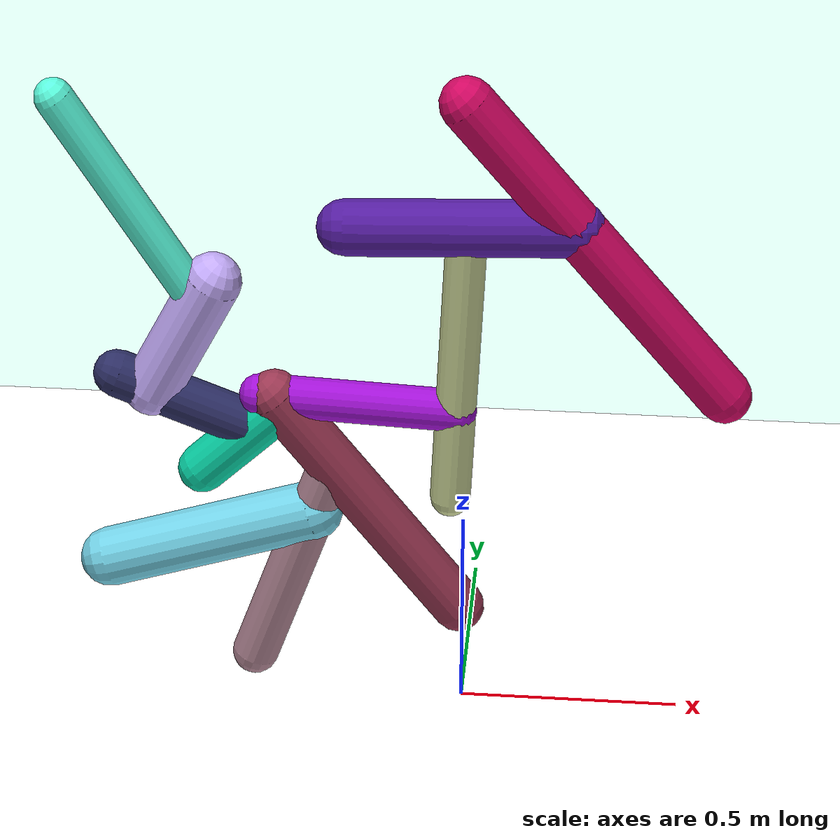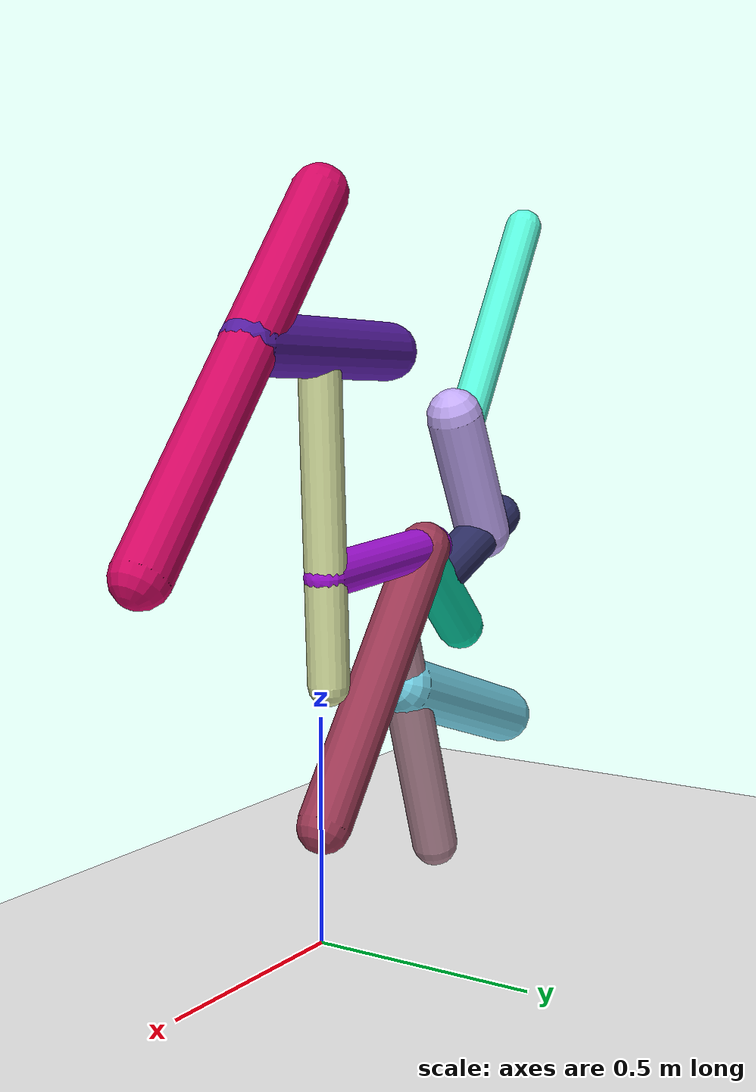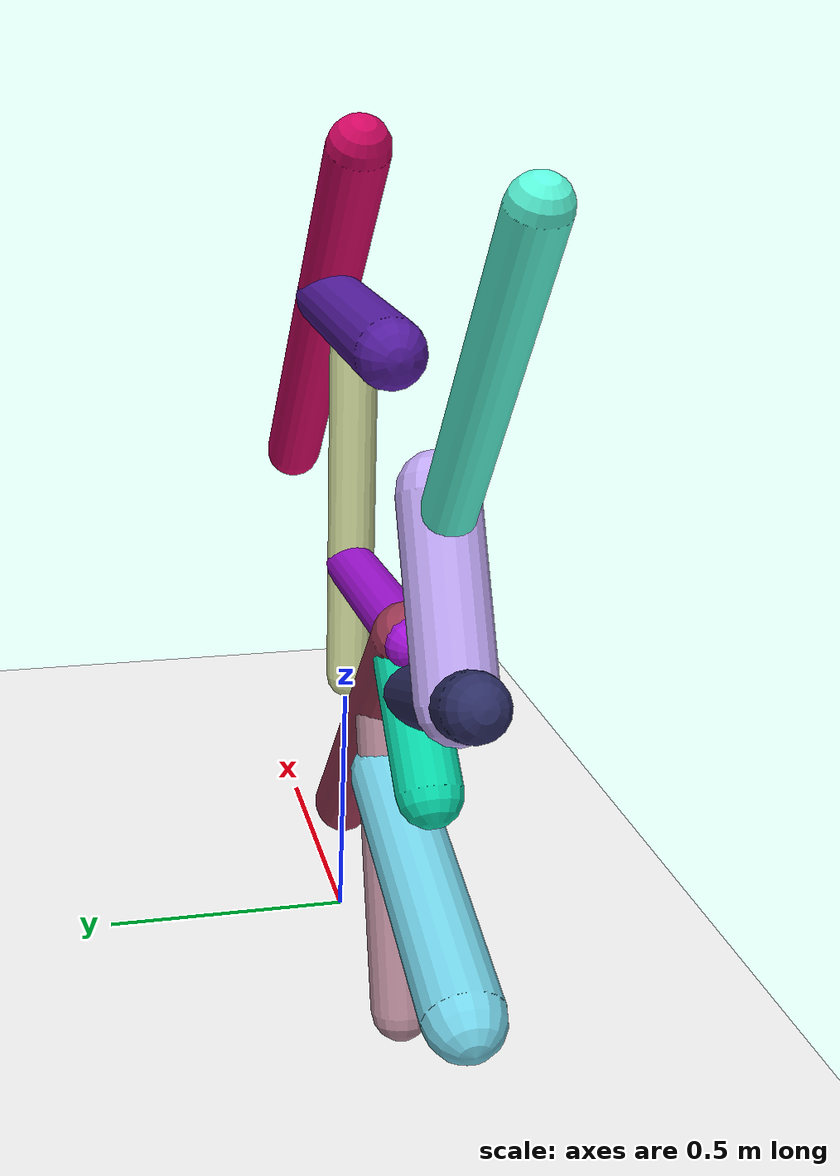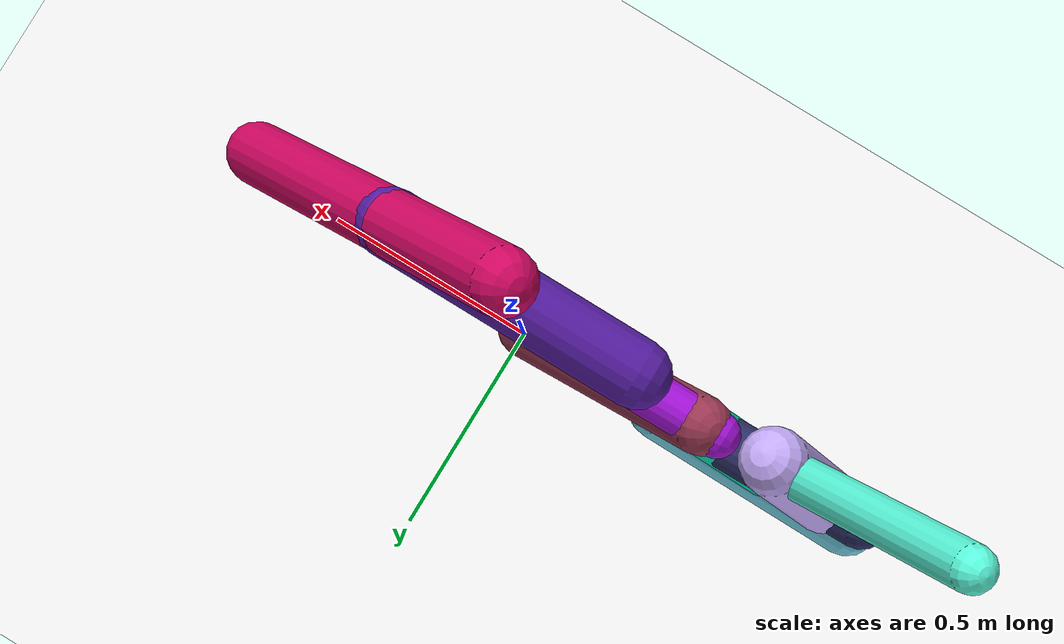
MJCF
<mujoco model="morphology">
  <option timestep="0.01"/>
  <default>
    <default class="/"/>
    <default class="0/"/>
    <default class="0/1/"/>
    <default class="0/1/2/"/>
    <default class="0/1/2/3/"/>
    <default class="0/1/2/3/4/"/>
    <default class="0/1/2/3/4/5/"/>
    <default class="0/1/2/3/4/5/6/"/>
    <default class="0/1/2/3/4/7/"/>
    <default class="0/1/2/3/4/7/8/"/>
    <default class="0/1/2/3/4/7/8/9/"/>
    <default class="0/1/2/3/4/7/8/9/10/"/>
  </default>
  <asset>
    <texture name="texplane" type="2d" builtin="checker" rgb1="0.10000000000000001 0.20000000000000001 0.29999999999999999" rgb2="0.20000000000000001 0.29999999999999999 0.40000000000000002" width="300" height="300"/>
    <material name="MatPlane" class="/" texture="texplane" texrepeat="20 20" specular="1" shininess="1" reflectance="0.5"/>
  </asset>
  <worldbody>
    <light name="//unnamed_light_0" class="/" directional="true" pos="0 0 1.5" dir="0 0 -1.3" cutoff="100" exponent="1" diffuse="1 1 1" specular="0.10000000000000001 0.10000000000000001 0.10000000000000001"/>
    <geom name="ground" class="/" type="plane" size="15 15 0.5" material="MatPlane" rgba="1 1 1 1"/>
    <site name="body" class="/" size="9.9999999999999995e-07 9.9999999999999995e-07 9.9999999999999995e-07" pos="0 0 1.5937223196029664"/>
    <body pos="0 0 1.5937223196029664" name="0/">
      <joint name="0/rootx/" class="/" type="slide" axis="1 0 0" limited="false" stiffness="0" armature="0" damping="0"/>
      <joint name="0/rootz/" class="/" type="slide" axis="0 0 1" limited="false" stiffness="0" armature="0" damping="0"/>
      <joint name="0/rooty/" class="/" type="hinge" axis="0 1 0" limited="false" stiffness="0" armature="0" damping="0"/>
      <geom name="0/geom" class="0/" type="capsule" contype="1" conaffinity="1" condim="3" size="0.061814718757269627" rgba="0.82457119705670245 0.023491205641625656 0.38584653690992665 1" friction="0.59999999999999998 0.10000000000000001 0.10000000000000001" fromto="0 0 0 0.5795644691687194 0 -0.72140255403867171"/>
      <site name="0/end0" class="0/" size="0.0050000000000000001" pos="0.5795644691687194 0 -0.72140255403867171"/>
      <site name="0/attach1" class="0/" size="9.9999999999999995e-07 9.9999999999999995e-07 9.9999999999999995e-07" pos="0.24312702643350736 0 -0.30262803735454774"/>
      <body pos="0.24312702643350736 0 -0.30262803735454774" name="0/1/">
        <joint name="0/1/joint/" class="0/" type="hinge" axis="0 1 0" limited="true" range="-35.271294893660347 35.271294893660347"/>
        <geom name="0/1/geom" class="0/1/" type="capsule" contype="1" conaffinity="1" condim="3" size="0.064137200323948096" rgba="0.33465027778372225 0.11384248422378174 0.63260252153754204 1" friction="0.59999999999999998 0.10000000000000001 0.10000000000000001" fromto="0 0 0 -0.50792039785211185 0 -0.02119942445548828"/>
        <site name="0/1/end1" class="0/1/" size="0.0050000000000000001" pos="-0.50792039785211185 0 -0.02119942445548828"/>
        <site name="0/1/attach2" class="0/1/" size="9.9999999999999995e-07 9.9999999999999995e-07 9.9999999999999995e-07" pos="-0.24013173848822275 0 -0.010022544223412665"/>
        <body pos="-0.24013173848822275 0 -0.010022544223412665" name="0/1/2/">
          <geom name="0/1/2/geom" class="0/1/2/" type="capsule" contype="1" conaffinity="1" condim="3" size="0.045987058666026592" rgba="0.82778414055767469 0.86680974332060345 0.61635213896684571 1" friction="0.59999999999999998 0.10000000000000001 0.10000000000000001" fromto="0 0 0 -0.032843291983322254 0 -0.7165169607050963"/>
          <site name="0/1/2/end2" class="0/1/2/" size="0.0050000000000000001" pos="-0.032843291983322254 0 -0.7165169607050963"/>
          <site name="0/1/2/attach3" class="0/1/2/" size="9.9999999999999995e-07 9.9999999999999995e-07 9.9999999999999995e-07" pos="-0.022049367318711644 0 -0.48103416870318944"/>
          <body pos="-0.022049367318711644 0 -0.48103416870318944" name="0/1/2/3/">
            <joint name="0/1/2/3/joint/" class="0/1/2/" type="hinge" axis="0 1 0" limited="true" range="-57.09290934808692 57.09290934808692"/>
            <geom name="0/1/2/3/geom" class="0/1/2/3/" type="capsule" contype="1" conaffinity="1" condim="3" size="0.04812817781446211" rgba="0.64241987009919199 0.070497617459212458 0.8468628478177036 1" friction="0.59999999999999998 0.10000000000000001 0.10000000000000001" fromto="0 0 0 -0.4394650411590047 0 0.020073671619084799"/>
            <site name="0/1/2/3/end3" class="0/1/2/3/" size="0.0050000000000000001" pos="-0.4394650411590047 0 0.020073671619084799"/>
            <site name="0/1/2/3/attach4" class="0/1/2/3/" size="9.9999999999999995e-07 9.9999999999999995e-07 9.9999999999999995e-07" pos="-0.4073181238286529 0 0.018605280275933871"/>
            <body pos="-0.4073181238286529 0 0.018605280275933871" name="0/1/2/3/4/">
              <joint name="0/1/2/3/4/joint/" class="0/1/2/3/" type="hinge" axis="0 1 0" limited="true" range="-35.375353892833481 35.375353892833481"/>
              <geom name="0/1/2/3/4/geom" class="0/1/2/3/4/" type="capsule" contype="1" conaffinity="1" condim="3" size="0.060239342640682342" rgba="0.60890403015048877 0.21938454724087542 0.32750648822257744 1" friction="0.59999999999999998 0.10000000000000001 0.10000000000000001" fromto="0 0 0 0.41653768247024781 0 -0.56038537503953156"/>
              <site name="0/1/2/3/4/end4" class="0/1/2/3/4/" size="0.0050000000000000001" pos="0.41653768247024781 0 -0.56038537503953156"/>
              <site name="0/1/2/3/4/attach5" class="0/1/2/3/4/" size="9.9999999999999995e-07 9.9999999999999995e-07 9.9999999999999995e-07" pos="0.12992508985690349 0 -0.17479359796386776"/>
              <body pos="0.12992508985690349 0 -0.17479359796386776" name="0/1/2/3/4/5/">
                <joint name="0/1/2/3/4/5/joint/" class="0/1/2/3/4/" type="hinge" axis="0 1 0" limited="true" range="-41.073199378056074 41.073199378056074"/>
                <geom name="0/1/2/3/4/5/geom" class="0/1/2/3/4/5/" type="capsule" contype="1" conaffinity="1" condim="3" size="0.053722467302398609" rgba="0.70599592656928889 0.53417729328368624 0.59063058269953106 1" friction="0.59999999999999998 0.10000000000000001 0.10000000000000001" fromto="0 0 0 -0.18523284267120688 0 -0.54384926860431937"/>
                <site name="0/1/2/3/4/5/end5" class="0/1/2/3/4/5/" size="0.0050000000000000001" pos="-0.18523284267120688 0 -0.54384926860431937"/>
                <site name="0/1/2/3/4/5/attach6" class="0/1/2/3/4/5/" size="9.9999999999999995e-07 9.9999999999999995e-07 9.9999999999999995e-07" pos="-0.046186086218277397 0 -0.13560375604714861"/>
                <body pos="-0.046186086218277397 0 -0.13560375604714861" name="0/1/2/3/4/5/6/">
                  <joint name="0/1/2/3/4/5/6/joint/" class="0/1/2/3/4/5/" type="hinge" axis="0 1 0" limited="true" range="-42.446897267931625 42.446897267931625"/>
                  <geom name="0/1/2/3/4/5/6/geom" class="0/1/2/3/4/5/6/" type="capsule" contype="1" conaffinity="1" condim="3" size="0.068641359471369873" rgba="0.4542964034038881 0.82832085931233534 0.91168562254193675 1" friction="0.59999999999999998 0.10000000000000001 0.10000000000000001" fromto="0 0 0 -0.4717241051741744 0 -0.15768099426176896"/>
                  <site name="0/1/2/3/4/5/6/end6" class="0/1/2/3/4/5/6/" size="0.0050000000000000001" pos="-0.4717241051741744 0 -0.15768099426176896"/>
                </body>
              </body>
              <site name="0/1/2/3/4/attach7" class="0/1/2/3/4/" size="9.9999999999999995e-07 9.9999999999999995e-07 9.9999999999999995e-07" pos="0.016373427848274322 0 -0.022027849799863646"/>
              <body pos="0.016373427848274322 0 -0.022027849799863646" name="0/1/2/3/4/7/">
                <joint name="0/1/2/3/4/7/joint/" class="0/1/2/3/4/" type="hinge" axis="0 1 0" limited="true" range="-32.818792124034161 32.818792124034161"/>
                <geom name="0/1/2/3/4/7/geom" class="0/1/2/3/4/7/" type="capsule" contype="1" conaffinity="1" condim="3" size="0.056470434853130656" rgba="0.030241961856818267 0.83443289671715482 0.65984533534110257 1" friction="0.59999999999999998 0.10000000000000001 0.10000000000000001" fromto="0 0 0 -0.18386461127816189 0 -0.18455008651390181"/>
                <site name="0/1/2/3/4/7/end7" class="0/1/2/3/4/7/" size="0.0050000000000000001" pos="-0.18386461127816189 0 -0.18455008651390181"/>
                <site name="0/1/2/3/4/7/attach8" class="0/1/2/3/4/7/" size="9.9999999999999995e-07 9.9999999999999995e-07 9.9999999999999995e-07" pos="-0.062725468076674104 0 -0.062959318161896358"/>
                <body pos="-0.062725468076674104 0 -0.062959318161896358" name="0/1/2/3/4/7/8/">
                  <geom name="0/1/2/3/4/7/8/geom" class="0/1/2/3/4/7/8/" type="capsule" contype="1" conaffinity="1" condim="3" size="0.054098699413880943" rgba="0.17681809776735857 0.18253959075211668 0.39476333540521213 1" friction="0.59999999999999998 0.10000000000000001 0.10000000000000001" fromto="0 0 0 -0.30878339073606675 0 0.1263506253689759"/>
                  <site name="0/1/2/3/4/7/8/end8" class="0/1/2/3/4/7/8/" size="0.0050000000000000001" pos="-0.30878339073606675 0 0.1263506253689759"/>
                  <site name="0/1/2/3/4/7/8/attach9" class="0/1/2/3/4/7/8/" size="9.9999999999999995e-07 9.9999999999999995e-07 9.9999999999999995e-07" pos="-0.23004882734113064 0 0.094133344188827614"/>
                  <body pos="-0.23004882734113064 0 0.094133344188827614" name="0/1/2/3/4/7/8/9/">
                    <joint name="0/1/2/3/4/7/8/9/joint/" class="0/1/2/3/4/7/8/" type="hinge" axis="0 1 0" limited="true" range="-64.621969527905463 64.621969527905463"/>
                    <geom name="0/1/2/3/4/7/8/9/geom" class="0/1/2/3/4/7/8/9/" type="capsule" contype="1" conaffinity="1" condim="3" size="0.065903103681442823" rgba="0.76880978845686188 0.67190220364571662 0.98081645555754315 1" friction="0.59999999999999998 0.10000000000000001 0.10000000000000001" fromto="0 0 0 0.14283506380378941 0 0.28808814548865325"/>
                    <site name="0/1/2/3/4/7/8/9/end9" class="0/1/2/3/4/7/8/9/" size="0.0050000000000000001" pos="0.14283506380378941 0 0.28808814548865325"/>
                    <site name="0/1/2/3/4/7/8/9/attach10" class="0/1/2/3/4/7/8/9/" size="9.9999999999999995e-07 9.9999999999999995e-07 9.9999999999999995e-07" pos="0.1124778194035166 0 0.22685974674313192"/>
                    <body pos="0.1124778194035166 0 0.22685974674313192" name="0/1/2/3/4/7/8/9/10/">
                      <joint name="0/1/2/3/4/7/8/9/10/joint/" class="0/1/2/3/4/7/8/9/" type="hinge" axis="0 1 0" limited="true" range="-69.064272482482011 69.064272482482011"/>
                      <geom name="0/1/2/3/4/7/8/9/10/geom" class="0/1/2/3/4/7/8/9/10/" type="capsule" contype="1" conaffinity="1" condim="3" size="0.04384251902296557" rgba="0.35420570909674354 0.99296733958071282 0.87296386594830888 1" friction="0.59999999999999998 0.10000000000000001 0.10000000000000001" fromto="0 0 0 -0.30510145263193794 0 0.51344252842092408"/>
                      <site name="0/1/2/3/4/7/8/9/10/end10" class="0/1/2/3/4/7/8/9/10/" size="0.0050000000000000001" pos="-0.30510145263193794 0 0.51344252842092408"/>
                    </body>
                  </body>
                </body>
              </body>
            </body>
          </body>
        </body>
      </body>
      <camera name="0/side" class="0/" mode="trackcom" pos="0.40000000000000002 -4 0.20000000000000001" quat="0.70699999999999996 0.70699999999999996 0 0"/>
    </body>
  </worldbody>
  <actuator>
    <motor name="0/1/motor" class="0/1/" ctrllimited="true" ctrlrange="-1 1" gear="84" joint="0/1/joint/"/>
    <motor name="0/1/2/3/motor" class="0/1/2/3/" ctrllimited="true" ctrlrange="-1 1" gear="81" joint="0/1/2/3/joint/"/>
    <motor name="0/1/2/3/4/motor" class="0/1/2/3/4/" ctrllimited="true" ctrlrange="-1 1" gear="88" joint="0/1/2/3/4/joint/"/>
    <motor name="0/1/2/3/4/5/motor" class="0/1/2/3/4/5/" ctrllimited="true" ctrlrange="-1 1" gear="85" joint="0/1/2/3/4/5/joint/"/>
    <motor name="0/1/2/3/4/5/6/motor" class="0/1/2/3/4/5/6/" ctrllimited="true" ctrlrange="-1 1" gear="79" joint="0/1/2/3/4/5/6/joint/"/>
    <motor name="0/1/2/3/4/7/motor" class="0/1/2/3/4/7/" ctrllimited="true" ctrlrange="-1 1" gear="51" joint="0/1/2/3/4/7/joint/"/>
    <motor name="0/1/2/3/4/7/8/9/motor" class="0/1/2/3/4/7/8/9/" ctrllimited="true" ctrlrange="-1 1" gear="58" joint="0/1/2/3/4/7/8/9/joint/"/>
    <motor name="0/1/2/3/4/7/8/9/10/motor" class="0/1/2/3/4/7/8/9/10/" ctrllimited="true" ctrlrange="-1 1" gear="68" joint="0/1/2/3/4/7/8/9/10/joint/"/>
  </actuator>
  <sensor>
    <subtreelinvel name="velocity" body="0/"/>
  </sensor>
</mujoco>
